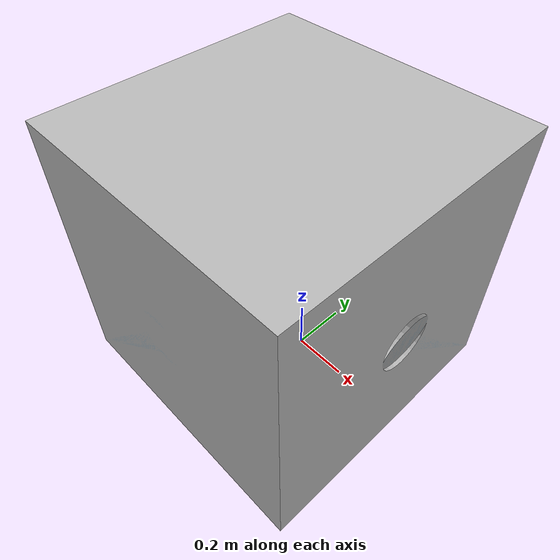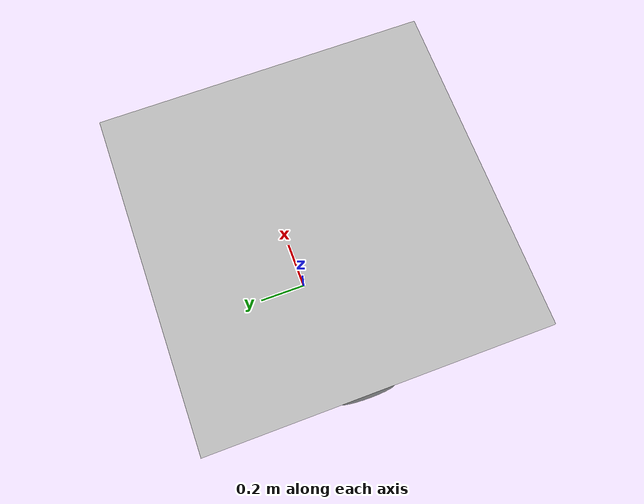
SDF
<?xml version="1.0"?>
<sdf version="1.3">
  <model name="Semaforo">
    <link name="link">
      <gravity>false</gravity>
       <inertial>
         <mass>0.1</mass>
       </inertial>
      <collision name="collision">
        <geometry>
          <mesh>
            <uri>model://semaforo/meshes/semaforo.dae</uri>
          </mesh>
        </geometry>
      </collision>
      <visual name="visual">
        <geometry>
          <mesh>
            <uri>model://semaforo/meshes/semaforo.dae</uri>
          </mesh>
        </geometry>
      </visual>
      <gravity>0</gravity>
    </link>
  </model>
</sdf>
